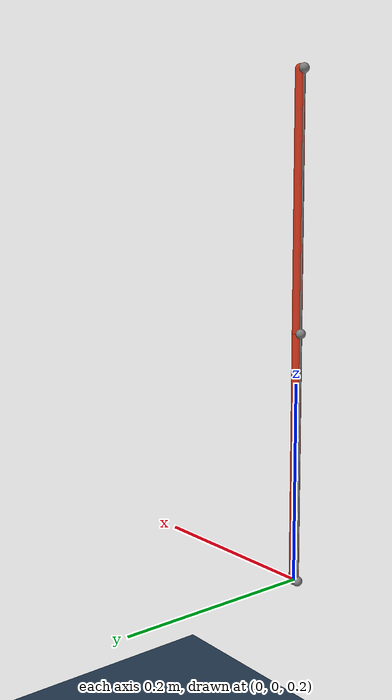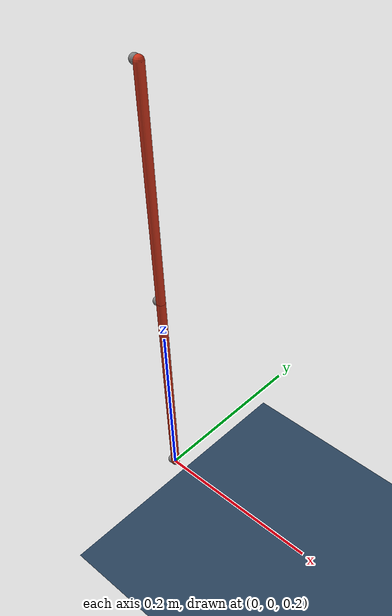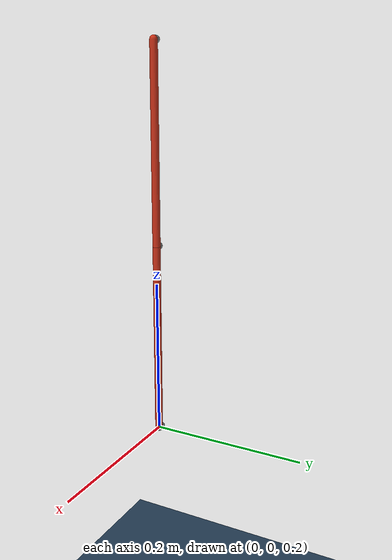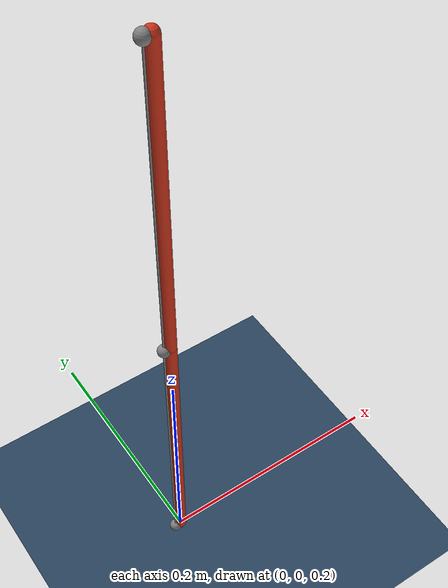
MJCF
<mujoco model="cable_trunk_model_example">
  <compiler angle="radian"/>

  <extension>
    <plugin plugin="mujoco.elasticity.cable"/>
  </extension>

  <custom>
    <text name="composite_actuated" data="rope_actuated"/>
  </custom>

  <asset>
    <texture type="2d" name="grid" builtin="checker" rgb1="0.1 0.2 0.3" rgb2="0.2 0.3 0.4" width="300" height="300"/>
    <material name="grid" texture="grid" texrepeat="8 8" reflectance="0.2"/>
  </asset>

  <worldbody>
    <geom size="10 10 0.01" type="plane" material="grid"/>
    <light pos="0 0 2" dir="0 0 -1"/>
    <site name="world_left" pos="-0.005 0 0.7"/>
    <body name="actuatedB_first" pos="0 0 0.7" quat="0 -0.707107 0 0.707107">
      <joint name="actuatedJ_0" pos="0 0 0" type="hinge" axis="0 1 0" group="3" stiffness="0.65" actuatorfrclimited="false" damping="0.032"/>
      <geom name="actuatedG0" size="0.005 0.125" pos="0.125 0 0" quat="0.707107 0 -0.707107 0" type="capsule" rgba="0.8 0.2 0.1 1"/>
      <site name="actuatedS_first" pos="0 0 0" group="3"/>
      <site name="actuatedB_0_left" pos="0.25 0 0.005"/>
      <body name="actuatedB_1" pos="0.25 0 0">
        <joint name="actuatedJ_1" pos="0 0 0" type="hinge" axis="0 1 0" group="3" stiffness="0.65" actuatorfrclimited="false" damping="0.032"/>
        <geom name="actuatedG1" size="0.005 0.125" pos="0.125 0 0" quat="0.707107 0 -0.707107 0" type="capsule" rgba="0.8 0.2 0.1 1"/>
        <site name="actuatedB_1_left" pos="0.25 0 0.005"/>
        <site name="endeffector" pos="0.25 0 0"/>
      </body>
    </body>
  </worldbody>

  <!-- tendon attached at tfirst link-->
  <tendon>
    <spatial name="chain_tendon_left_middle" stiffness="0" damping="0" width="0.001">
      <site site="world_left"/>
      <site site="actuatedB_0_left"/>
    </spatial>
  </tendon>

  <!-- tendon attached up tp the bottom -->
  <tendon>
    <spatial name="chain_tendon_left_bottom" stiffness="0" damping="0" width="0.001">
      <site site="world_left"/>
      <site site="actuatedB_0_left"/>
      <site site="actuatedB_1_left"/>
    </spatial>
  </tendon>

  <actuator>
    <general tendon="chain_tendon_left_middle" gear="1000" />
    <general tendon="chain_tendon_left_bottom" gear="1000" />
  </actuator>

  <contact>
    <exclude body1="actuatedB_first" body2="actuatedB_1"/>
  </contact>

</mujoco>
